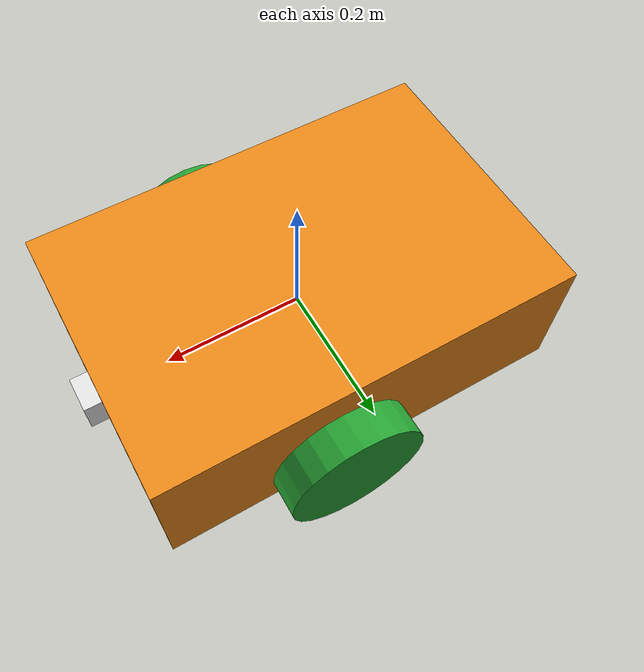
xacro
<?xml version='1.0'?>

<robot name="robot" xmlns:xacro="http://www.ros.org/wiki/xacro">

  <xacro:include filename="$(find 413455)/models/diff_drive_robot/urdf/diff_drive_robot.gazebo" />
  <xacro:include filename="$(find 413455)/models/diff_drive_robot/urdf/materials.xacro" />
  <xacro:include filename="$(find 413455)/models/diff_drive_robot/urdf/inertial.usdf.xacro" />

  <link name='base'>
    <pose>0 0 0.0 0 0 0</pose>
    <xacro:inertial_box mass="10.0" x="0.6" y="0.4" z="0.2">
      <origin xyz="0.0 0 0.1" rpy=" 0 0 0"/>
    </xacro:inertial_box>

    <collision name='collision'>
      <geometry>
        <box size=".6 .4 .2"/>
      </geometry>
    </collision>

    <visual name='base_visual'>
      <origin xyz="0 0 0" rpy=" 0 0 0"/>
      <geometry>
        <box size=".6 .4 .2"/>
      </geometry>
      <material name="orange"/>
    </visual>

    <collision name='caster_collision_rear'>
      <origin xyz="-0.24 0 -0.08" rpy=" 0 0 0"/>
      <geometry>
        <sphere radius="0.06"/>
      </geometry>
      <surface>
        <friction>
          <ode>
            <mu>0</mu>
            <mu2>0</mu2>
            <slip1>1.0</slip1>
            <slip2>1.0</slip2>
          </ode>
        </friction>
      </surface>
    </collision>

    <visual name='caster_visual_rear'>
      <origin xyz="-0.24 0 -0.08" rpy=" 0 0 0"/>
      <geometry>
        <sphere radius="0.06"/>
      </geometry>
      <material name="white"/>
    </visual>

    <collision name='caster_collision_forward'>
      <origin xyz="0.24 0 -0.08" rpy=" 0 0 0"/>
      <geometry>
        <sphere radius="0.06"/>
      </geometry>
      <surface>
        <friction>
          <ode>
            <mu>0</mu>
            <mu2>0</mu2>
            <slip1>1.0</slip1>
            <slip2>1.0</slip2>
          </ode>
        </friction>
      </surface>
    </collision>

    <visual name='caster_visual_forward'>
      <origin xyz="0.24 0 -0.08" rpy=" 0 0 0"/>
      <geometry>
        <sphere radius="0.06"/>
      </geometry>
      <material name="white"/>
    </visual>

  </link>

  <link name="left_wheel">
    <collision name="collision">
      <origin xyz="0 0 0" rpy="0 1.5707 1.5707"/>
      <geometry>
        <cylinder radius="0.1" length="0.05"/>
      </geometry>
    </collision>
    <visual name="left_wheel_visual">
      <origin xyz="0 0 0" rpy="0 1.5707 1.5707"/>
      <geometry>
        <cylinder radius="0.1" length="0.05"/>
      </geometry>
      <material name="green"/>
    </visual>
    <xacro:inertial_cylinder mass="5.0" length="0.05" radius="0.1">
      <origin xyz="0 0 0" rpy="0 1.5707 1.5707"/>
    </xacro:inertial_cylinder>
  </link>

  <link name="right_wheel">
    <collision name="collision">
      <origin xyz="0 0 0" rpy="0 1.5707 1.5707"/>
      <geometry>
        <cylinder radius="0.1" length="0.05"/>
      </geometry>
    </collision>
    <visual name="right_wheel_visual">
      <origin xyz="0 0 0" rpy="0 1.5707 1.5707"/>
      <geometry>
        <cylinder radius="0.1" length="0.05"/>
      </geometry>
      <material name="green"/>
    </visual>
    <xacro:inertial_cylinder mass="5.0" length="0.05" radius="0.1">
      <origin xyz="0 0 0" rpy="0 1.5707 1.5707"/>
    </xacro:inertial_cylinder>
  </link>

  <link name='lidar'>
    <visual name='lidar_visual'>
      <origin xyz="0 0 0" rpy=" 0 0 0"/>
      <geometry>
        <box size=".05 .05 .05"/>
      </geometry>
      <material name="white"/>
    </visual>
  </link>

  <joint type="continuous" name="left_wheel_hinge">
    <origin xyz="0.05 0.226 -0.05" rpy="0 0 0"/>
    <child link="left_wheel"/>
    <parent link="base"/>
    <axis xyz="0 1 0" rpy="0 0 0"/>
    <limit effort="100" velocity="100"/>
    <joint_properties damping="0.0" friction="0.0"/>
  </joint>

  <transmission name="left_wheel_trans">
      <type>transmission_interface/SimpleTransmission</type>
      <joint name="left_wheel_hinge">
         <hardwareInterface>EffortJointInterface</hardwareInterface>
      </joint>
      <actuator name="left_wheel_motor">
         <hardwareInterface>EffortJointInterface</hardwareInterface>
         <mechanicalReduction>1</mechanicalReduction>
      </actuator>
  </transmission>

  <joint type="continuous" name="right_wheel_hinge">
    <origin xyz="0.05 -0.226 -0.05" rpy="0 0 0"/>
    <child link="right_wheel"/>
    <parent link="base"/>
    <axis xyz="0 1 0" rpy="0 0 0"/>
    <limit effort="100" velocity="100"/>
    <joint_properties damping="0.0" friction="0.0"/>
  </joint>

  <transmission name="right_wheel_trans">
      <type>transmission_interface/SimpleTransmission</type>
      <joint name="right_wheel_hinge">
         <hardwareInterface>EffortJointInterface</hardwareInterface>
      </joint>
      <actuator name="right_wheel_motor">
         <hardwareInterface>EffortJointInterface</hardwareInterface>
         <mechanicalReduction>1</mechanicalReduction>
      </actuator>
  </transmission>

  <joint type="fixed" name="lidar_joint">
    <origin xyz="0.3 0.0 0" rpy="0 0 -${pi/2}"/>
    <child link="lidar"/>
    <parent link="base"/>
  </joint>

</robot>

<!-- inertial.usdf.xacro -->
<robot xmlns:xacro="http://www.ros.org/wiki/xacro">
    <xacro:macro name="inertial_sphere" params="mass radius *origin">
        <inertial>
            <xacro:insert_block name="origin"/>
            <mass value="${mass}" />
            <inertia ixx="${(2/5) * mass * (radius*radius)}" ixy="0.0" ixz="0.0"
                    iyy="${(2/5) * mass * (radius*radius)}" iyz="0.0"
                    izz="${(2/5) * mass * (radius*radius)}" />
        </inertial>
    </xacro:macro>

    <xacro:macro name="inertial_box" params="mass x y z *origin">
        <inertial>
            <xacro:insert_block name="origin"/>
            <mass value="${mass}" />
            <inertia ixx="${(1/12) * mass * (y*y+z*z)}" ixy="0.0" ixz="0.0"
                    iyy="${(1/12) * mass * (x*x+z*z)}" iyz="0.0"
                    izz="${(1/12) * mass * (x*x+y*y)}" />
        </inertial>
    </xacro:macro>

    <xacro:macro name="inertial_cylinder" params="mass length radius *origin">
        <inertial>
            <xacro:insert_block name="origin"/>
            <mass value="${mass}" />
            <inertia ixx="${(1/12) * mass * (3*radius*radius + length*length)}" ixy="0.0" ixz="0.0"
                    iyy="${(1/12) * mass * (3*radius*radius + length*length)}" iyz="0.0"
                    izz="${(1/2) * mass * (radius*radius)}" />
        </inertial>
    </xacro:macro>
</robot>
